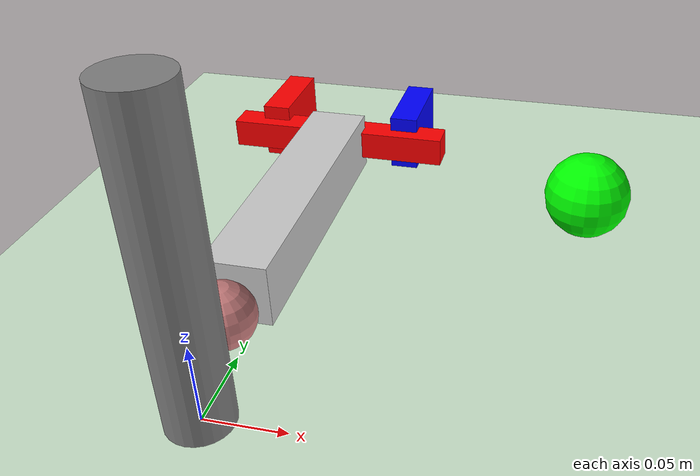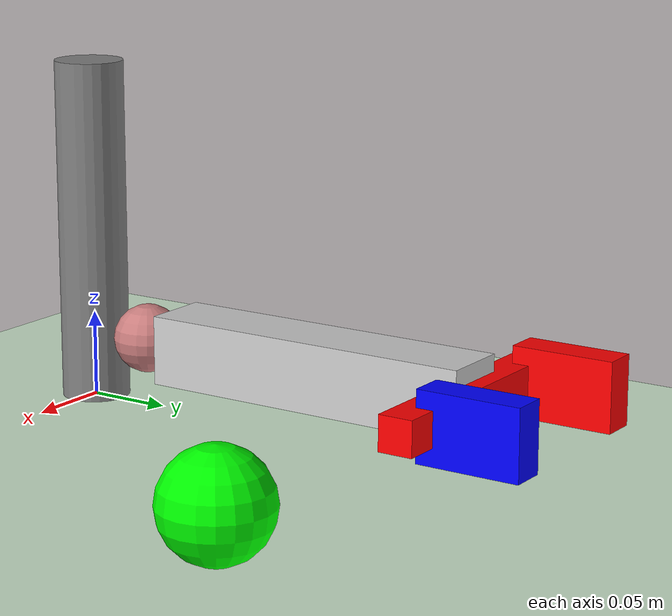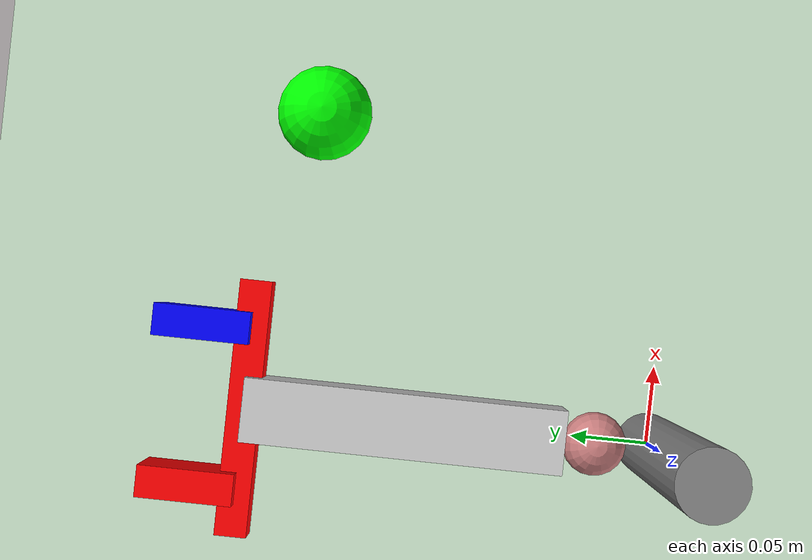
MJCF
<mujoco>
  <include file="./common/materials.xml"/>
  <option gravity="0 0 -9.81"/>

  <default>
    <joint damping=".3"/>
  </default>

  <worldbody>

    <light name="light" pos="0 0 3"/>
    <geom name="floor" type="plane" size="5 5 0.1" pos="0 0 0" rgba="0.8 0.9 0.8 1" material="motphys-ground"/>

    <body name="base" pos="0 0 0">
      <geom type="cylinder" size="0.02 0.1" pos = "0 0 0.1" rgba="0.5 0.5 0.5 1"/>
      <body name = "Bar" pos = "0 0 0">
        <geom type="sphere" size="0.02" pos = "0 0.04 0.04" rgba="0.8 0.5 0.5 1"/>
        <joint name="up_down" type="slide" axis="0 0 1" range="-0.02 0.2" damping="10.0"/>
        <body name = "ele" pos = "0 0.04 0.02">
          <joint name="arm_joint" type="hinge" axis="0 0 1" range="-45 45"/>
          <body name="arm" pos="0 0.12 0.02">
          <geom type="box" size="0.02 0.1 0.02" rgba="0.8 0.8 0.8 1"/>

            <body name="gripper" pos="0 0.13 0">
              <geom type="box" size="0.08 0.01 0.01" pos = "0 -0.03 0" rgba="1 0 0 1"/>

              <body name="left_finger" pos="-0.05 0 0">
                <joint name="left_joint" type="slide" axis="1 0 0" range="0 0.05" damping="0.2"/>
                <geom type="box" size="0.01 0.03 0.02" rgba="1 0 0 1"/>
              </body>

              <body name="right_finger" pos="0.05 0 0">
                <joint name="right_joint" type="slide" axis="-1 0 0" range="0 0.05" damping="0.2"/>
                <geom type="box" size="0.01 0.03 0.02" rgba="0 0 1 1"/>
              </body>
            </body>
          </body>
        </body>
      </body>
    </body>

    <body name="target" pos="0.19 0.23 0.03">
      <freejoint/>
      <geom type="sphere" size="0.03" rgba="0 1 0 1" mass="0.1"/>
    </body>
  </worldbody>

  <tendon>
    <fixed name="split">
      <joint joint="left_joint" coef="0.5"/>
      <joint joint="right_joint" coef="0.5"/>
    </fixed>
  </tendon>
  <equality>
    <joint joint1="left_joint" joint2="right_joint" solimp="0.95 0.99 0.001" solref="0.005 1"/>
  </equality>

  <actuator>
    <position name="rotate" joint="arm_joint" kp="500"  kv="20" ctrlrange="-1 1"/>
    <position name="up_down" joint="up_down"  kp="500"  kv="20" ctrlrange="0 0.2"/>
    <general name="fingers_actuator" tendon="split" forcerange="-5 5" ctrlrange="-10 10"
      gainprm="0.3137255 0 0" biasprm="0 -100 -10"/>
  </actuator>
</mujoco>

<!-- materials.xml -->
<!--
Common textures, colors and materials to be used throughout this suite. Some
materials such as xxx_highlight are activated on occurence of certain events,
for example receiving a positive reward.
-->
<mujoco>
  <asset>
    <texture name="motphys-ground" type="2d" file="motphys-ground.png" />
    <material name="motphys-ground" texture="motphys-ground" texuniform="true"
      texrepeat="0.4 0.4" />
  </asset>
</mujoco>
